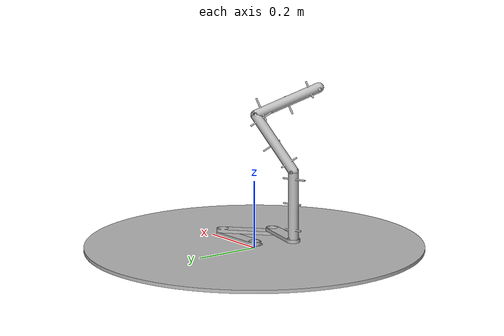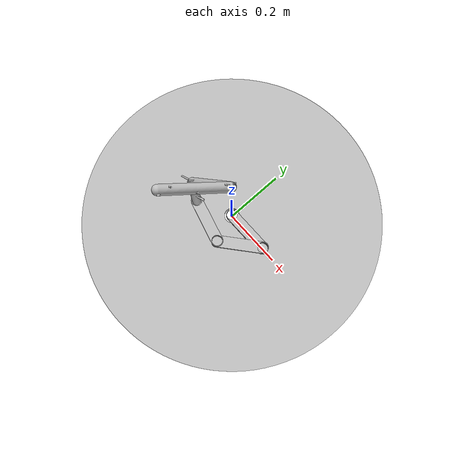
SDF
<?xml version="1.0" ?>
<sdf version="1.6">
	<model name="6DOF_arm">
		<link name="base">
			<self_collide>false</self_collide>
			<pose frame="">0.0 0.0 0.0 0.0 -0.0 0.0</pose>
			<inertial>
				<pose frame="">0.0 0.0 0.0 0 0 0</pose>
				<mass>1000</mass>
				<inertia>
					<ixx>0.1</ixx>
					<ixy>0.0</ixy>
					<ixz>0.0</ixz>
					<iyy>0.1</iyy>
					<iyz>0.0</iyz>
					<izz>0.1</izz>
				</inertia>
			</inertial>
			<collision name="base_collision">
				<geometry>
					<mesh>
						<uri>model://6DOF_arm/meshes/CAD/base.stl</uri>
						<scale>0.001 0.001 0.001</scale>
					</mesh>
				</geometry>
			</collision>
			<visual name="base_visual">
				<geometry>
					<mesh>
						<uri>model://6DOF_arm/meshes/CAD/base.stl</uri>
						<scale>0.001 0.001 0.001</scale>
					</mesh>
				</geometry>
			</visual>
		</link>
		<link name="link0">
			<self_collide>false</self_collide>
			<pose frame="">0.0 0.0 0.02 0.0 -0.0 0.0</pose>
			<inertial>
				<pose frame="">0.0 0.0 0.0 0 0 0</pose>
				<mass>0.1</mass>
				<inertia>
					<ixx>0.1</ixx>
					<ixy>0.0</ixy>
					<ixz>0.0</ixz>
					<iyy>0.1</iyy>
					<iyz>0.0</iyz>
					<izz>0.1</izz>
				</inertia>
			</inertial>
			<collision name="link0_collision">
				<geometry>
					<mesh>
						<uri>model://6DOF_arm/meshes/CAD/link0.stl</uri>
						<scale>0.001 0.001 0.001</scale>
					</mesh>
				</geometry>
			</collision>
			<visual name="link0_visual">
				<geometry>
					<mesh>
						<uri>model://6DOF_arm/meshes/CAD/link0.stl</uri>
						<scale>0.001 0.001 0.001</scale>
					</mesh>
				</geometry>
			</visual>
		</link>
		<link name="link1">
			<self_collide>false</self_collide>
			<pose frame="">0.15 0.0 0.03 0.0 -0.0 0.0</pose>
			<inertial>
				<pose frame="">0.0 0.0 0.0 0 0 0</pose>
				<mass>0.1</mass>
				<inertia>
					<ixx>0.1</ixx>
					<ixy>0.0</ixy>
					<ixz>0.0</ixz>
					<iyy>0.1</iyy>
					<iyz>0.0</iyz>
					<izz>0.1</izz>
				</inertia>
			</inertial>
			<collision name="link1_collision">
				<geometry>
					<mesh>
						<uri>model://6DOF_arm/meshes/CAD/link1.stl</uri>
						<scale>0.001 0.001 0.001</scale>
					</mesh>
				</geometry>
			</collision>
			<visual name="link1_visual">
				<geometry>
					<mesh>
						<uri>model://6DOF_arm/meshes/CAD/link1.stl</uri>
						<scale>0.001 0.001 0.001</scale>
					</mesh>
				</geometry>
			</visual>
		</link>
		<link name="link2">
			<self_collide>false</self_collide>
			<pose frame="">0.035093333532153326 -0.09641814145298089 0.04 0.0 -0.0 0.0</pose>
			<inertial>
				<pose frame="">0.0 0.0 0.0 0 0 0</pose>
				<mass>0.1</mass>
				<inertia>
					<ixx>0.1</ixx>
					<ixy>0.0</ixy>
					<ixz>0.0</ixz>
					<iyy>0.1</iyy>
					<iyz>0.0</iyz>
					<izz>0.1</izz>
				</inertia>
			</inertial>
			<collision name="link2_collision">
				<geometry>
					<mesh>
						<uri>model://6DOF_arm/meshes/CAD/link2.stl</uri>
						<scale>0.001 0.001 0.001</scale>
					</mesh>
				</geometry>
			</collision>
			<visual name="link2_visual">
				<geometry>
					<mesh>
						<uri>model://6DOF_arm/meshes/CAD/link2.stl</uri>
						<scale>0.001 0.001 0.001</scale>
					</mesh>
				</geometry>
			</visual>
		</link>
		<link name="link4">
			<self_collide>false</self_collide>
			<pose frame="">-0.04944244929145149 -0.03547729840260427 0.3166941705973708 0.0 -0.0 0.0</pose>
			<inertial>
				<pose frame="">0.0 0.0 0.0 0 0 0</pose>
				<mass>0.1</mass>
				<inertia>
					<ixx>0.1</ixx>
					<ixy>0.0</ixy>
					<ixz>0.0</ixz>
					<iyy>0.1</iyy>
					<iyz>0.0</iyz>
					<izz>0.1</izz>
				</inertia>
			</inertial>
			<collision name="link4_collision">
				<geometry>
					<mesh>
						<uri>model://6DOF_arm/meshes/CAD/link4.stl</uri>
						<scale>0.001 0.001 0.001</scale>
					</mesh>
				</geometry>
			</collision>
			<visual name="link4_visual">
				<geometry>
					<mesh>
						<uri>model://6DOF_arm/meshes/CAD/link4.stl</uri>
						<scale>0.001 0.001 0.001</scale>
					</mesh>
				</geometry>
			</visual>
		</link>
		<link name="link5">
			<self_collide>false</self_collide>
			<pose frame="">-0.038270048942510765 -0.09157591939286722 0.4319532737715608 0.0 -0.0 0.0</pose>
			<inertial>
				<pose frame="">0.0 0.0 0.0 0 0 0</pose>
				<mass>0.1</mass>
				<inertia>
					<ixx>0.1</ixx>
					<ixy>0.0</ixy>
					<ixz>0.0</ixz>
					<iyy>0.1</iyy>
					<iyz>0.0</iyz>
					<izz>0.1</izz>
				</inertia>
			</inertial>
			<collision name="link5_collision">
				<geometry>
					<mesh>
						<uri>model://6DOF_arm/meshes/CAD/link5.stl</uri>
						<scale>0.001 0.001 0.001</scale>
					</mesh>
				</geometry>
			</collision>
			<visual name="link5_visual">
				<geometry>
					<mesh>
						<uri>model://6DOF_arm/meshes/CAD/link5.stl</uri>
						<scale>0.001 0.001 0.001</scale>
					</mesh>
				</geometry>
			</visual>
		</link>
		<link name="link3">
			<self_collide>false</self_collide>
			<pose frame="">-0.10979554041120702 -0.05759528468760276 0.14000000000000004 0.0 -0.0 0.0</pose>
			<inertial>
				<pose frame="">0.0 0.0 0.0 0 0 0</pose>
				<mass>0.1</mass>
				<inertia>
					<ixx>0.1</ixx>
					<ixy>0.0</ixy>
					<ixz>0.0</ixz>
					<iyy>0.1</iyy>
					<iyz>0.0</iyz>
					<izz>0.1</izz>
				</inertia>
			</inertial>
			<collision name="link3_collision">
				<geometry>
					<mesh>
						<uri>model://6DOF_arm/meshes/CAD/link3.stl</uri>
						<scale>0.001 0.001 0.001</scale>
					</mesh>
				</geometry>
			</collision>
			<visual name="link3_visual">
				<geometry>
					<mesh>
						<uri>model://6DOF_arm/meshes/CAD/link3.stl</uri>
						<scale>0.001 0.001 0.001</scale>
					</mesh>
				</geometry>
			</visual>
		</link>
		<joint name="joint0" type="revolute">
			<parent>base</parent>
			<child>link0</child>
			<pose frame="">0.0 0.0 -0.01 0 0 0</pose>
			<axis>
				<xyz>0.0 0.0 -1.0</xyz>
				<limit>
					<lower>-3.141592653589793</lower>
					<upper>3.141592653589793</upper>
				</limit>
				<use_parent_model_frame>0</use_parent_model_frame>
			</axis>
		</joint>
		<joint name="joint1" type="revolute">
			<parent>link0</parent>
			<child>link1</child>
			<pose frame="">0.0 0.0 -0.01 0 0 0</pose>
			<axis>
				<xyz>0.0 0.0 1.0</xyz>
				<limit>
					<lower>-3.141592653589793</lower>
					<upper>3.141592653589793</upper>
				</limit>
				<use_parent_model_frame>0</use_parent_model_frame>
			</axis>
		</joint>
		<joint name="joint2" type="revolute">
			<parent>link1</parent>
			<child>link2</child>
			<pose frame="">0.0 0.0 -0.01 0 0 0</pose>
			<axis>
				<xyz>0.0 0.0 1.0</xyz>
				<limit>
					<lower>-3.141592653589793</lower>
					<upper>3.141592653589793</upper>
				</limit>
				<use_parent_model_frame>0</use_parent_model_frame>
			</axis>
		</joint>
		<joint name="joint3" type="revolute">
			<parent>link2</parent>
			<child>link3</child>
			<pose frame="">5.329070518200751e-17 -3.552713678800501e-17 -0.10000000000000003 0 0 0</pose>
			<axis>
				<xyz>0.0 0.0 1.0</xyz>
				<limit>
					<lower>-3.141592653589793</lower>
					<upper>3.141592653589793</upper>
				</limit>
				<use_parent_model_frame>0</use_parent_model_frame>
			</axis>
		</joint>
		<joint name="joint4" type="revolute">
			<parent>link3</parent>
			<child>link4</child>
			<pose frame="">-0.06035309111975555 -0.022117986284998503 -0.07660495596341164 0 0 0</pose>
			<axis>
				<xyz>-0.34202014332567154 0.9396926207859064 -4.595957498144083e-16</xyz>
				<limit>
					<lower>-3.141592653589793</lower>
					<upper>3.141592653589793</upper>
				</limit>
				<use_parent_model_frame>0</use_parent_model_frame>
			</axis>
		</joint>
		<joint name="joint5" type="revolute">
			<parent>link4</parent>
			<child>link5</child>
			<pose frame="">0.04928376467721066 0.07810286553766731 -0.03858631648770363 0 0 0</pose>
			<axis>
				<xyz>-0.6930533810288743 0.6194725963584857 0.3686878264946125</xyz>
				<limit>
					<lower>-3.141592653589793</lower>
					<upper>3.141592653589793</upper>
				</limit>
				<use_parent_model_frame>0</use_parent_model_frame>
			</axis>
		</joint>

		<plugin filename="libmusc_plugin.so" name="musc_plugin">
			<myoMuscle name="motor0">
				<link name="base">
					<viaPoint type="FIXPOINT">-0.3535533905932736 0.3535533905932738 0.23500000000000001</viaPoint>
				</link>
				<link name="link3">
					<viaPoint type="FIXPOINT">0.01887676909069857 0.015384004374797717 -0.07252237046363565</viaPoint>
				</link>
			</myoMuscle>
			<myoMuscle name="motor1">
				<link name="base">
					<viaPoint type="FIXPOINT">-0.49999999999999994 3.552713678800501e-17 0.23500000000000001</viaPoint>
				</link>
				<link name="link3">
					<viaPoint type="FIXPOINT">0.02545461743620008 0.01777814537807735 0.07909182690965107</viaPoint>
				</link>
			</myoMuscle>
			<myoMuscle name="motor2">
				<link name="base">
					<viaPoint type="FIXPOINT">-0.3535533905932738 -0.3535533905932738 0.23500000000000001</viaPoint>
				</link>
				<link name="link3">
					<viaPoint type="FIXPOINT">-0.03092693981095458 -0.0027430632214627336 -0.07252237046363558</viaPoint>
				</link>
			</myoMuscle>
			<myoMuscle name="motor3">
				<link name="base">
					<viaPoint type="FIXPOINT">7.105427357601002e-17 -0.4999999999999999 0.23500000000000001</viaPoint>
				</link>
				<link name="link3">
					<viaPoint type="FIXPOINT">-0.04314294388117123 -0.007189325084696483 0.07909182690965111</viaPoint>
				</link>
			</myoMuscle>
			<myoMuscle name="motor4">
				<link name="base">
					<viaPoint type="FIXPOINT">0.3535533905932736 -0.3535533905932738 0.23500000000000001</viaPoint>
				</link>
				<link name="link3">
					<viaPoint type="FIXPOINT">-0.013520891265131337 -0.015480135761085813 2.612588616361933e-06</viaPoint>
				</link>
			</myoMuscle>
			<myoMuscle name="motor5">
				<link name="base">
					<viaPoint type="FIXPOINT">0.4999999999999999 3.552713678800501e-17 0.23500000000000001</viaPoint>
				</link>
				<link name="link4">
					<viaPoint type="FIXPOINT">0.022324918590849334 0.023132578472214393 -0.024122824004097616</viaPoint>
				</link>
			</myoMuscle>
			<myoMuscle name="motor7">
				<link name="base">
					<viaPoint type="FIXPOINT">0.0 0.49999999999999994 0.23500000000000001</viaPoint>
				</link>
				<link name="link4">
					<viaPoint type="FIXPOINT">0.054134197004600065 0.0448398828329227 0.047809575573323715</viaPoint>
				</link>
			</myoMuscle>
			<myoMuscle name="motor8">
				<link name="base">
					<viaPoint type="FIXPOINT">0.0 0.49999999999999994 0.485</viaPoint>
				</link>
				<link name="link5">
					<viaPoint type="FIXPOINT">-0.013555337440477962 -0.009598158189616797 -0.03657546823082349</viaPoint>
				</link>
			</myoMuscle>
			<myoMuscle name="motor9">
				<link name="base">
					<viaPoint type="FIXPOINT">-0.3535533905932736 0.3535533905932738 0.485</viaPoint>
				</link>
				<link name="link5">
					<viaPoint type="FIXPOINT">-0.025357807925518738 -0.04918003170023283 0.056354901882654074</viaPoint>
				</link>
			</myoMuscle>
			<myoMuscle name="motor10">
				<link name="base">
					<viaPoint type="FIXPOINT">-0.49999999999999994 3.552713678800501e-17 0.485</viaPoint>
				</link>
				<link name="link5">
					<viaPoint type="FIXPOINT">0.05614150339446157 0.07024282523853935 0.00890062557275364</viaPoint>
				</link>
			</myoMuscle>
			<myoMuscle name="motor11">
				<link name="base">
					<viaPoint type="FIXPOINT">-0.3535533905932738 -0.3535533905932738 0.485</viaPoint>
				</link>
				<link name="link5">
					<viaPoint type="FIXPOINT">-0.05326324513207477 -0.05371917022656991 0.011525416097629915</viaPoint>
				</link>
			</myoMuscle>
			<myoMuscle name="motor12">
				<link name="base">
					<viaPoint type="FIXPOINT">7.105427357601002e-17 -0.4999999999999999 0.485</viaPoint>
				</link>
				<link name="link4">
					<viaPoint type="FIXPOINT">-0.06105356390893197 -0.03370827115421843 -0.03674119075132467</viaPoint>
				</link>
			</myoMuscle>
			<myoMuscle name="motor14">
				<link name="base">
					<viaPoint type="FIXPOINT">0.4999999999999999 -1.0658141036401502e-16 0.485</viaPoint>
				</link>
				<link name="link4">
					<viaPoint type="FIXPOINT">-0.04019865317547889 0.006232822193215775 -0.06464785233079795</viaPoint>
				</link>
			</myoMuscle>
			<myoMuscle name="motor15">
				<link name="base">
					<viaPoint type="FIXPOINT">0.3535533905932738 0.3535533905932736 0.485</viaPoint>
				</link>
				<link name="link3">
					<viaPoint type="FIXPOINT">0.040041588119665426 0.004015012408477316 2.6125886162908787e-06</viaPoint>
				</link>
			</myoMuscle>
			<endEffector link="link5" name="endeffector0">-0.049181493587140704 -0.07821440155553411 0.03865675979939539</endEffector>
		</plugin>
	</model>
</sdf>
